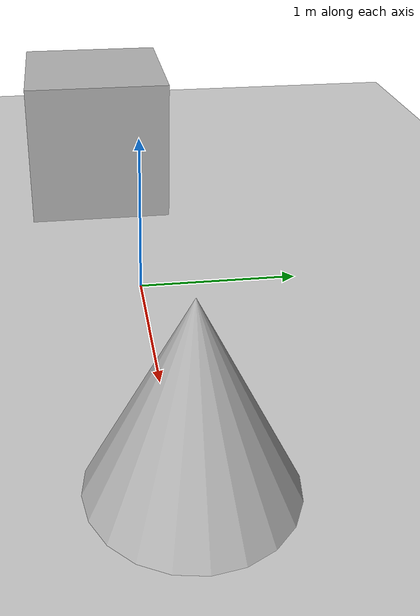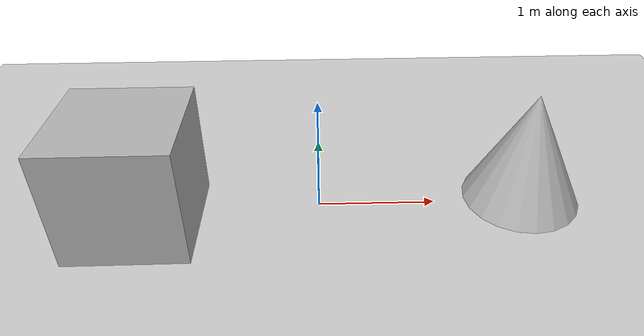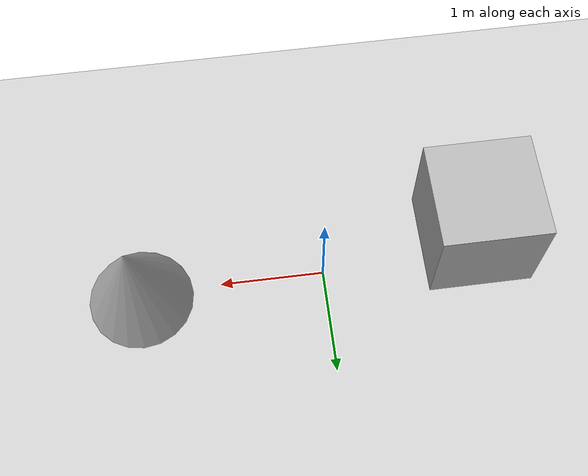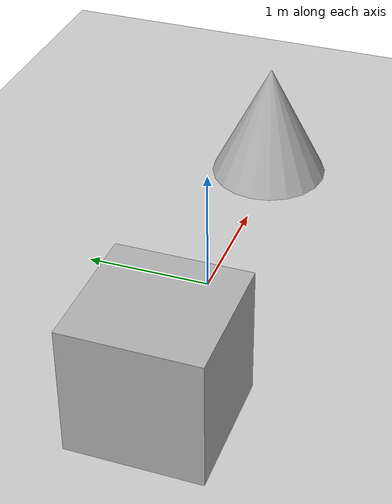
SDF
<sdf version='1.10'>
  <world name='empty'>
    <scene>
      <ambient>0.00999999978 0.00999999978 0.00999999978 1</ambient>
      <sky>
        <clouds>
          <speed>12</speed>
        </clouds>
      </sky>
      <shadows>true</shadows>
      <background>0.699999988 0.699999988 0.699999988 1</background>
    </scene>
    <plugin name='gz::sim::systems::Physics' filename='gz-sim-physics-system'/>
    <plugin name='gz::sim::systems::UserCommands' filename='gz-sim-user-commands-system'/>
    <plugin name='gz::sim::systems::SceneBroadcaster' filename='gz-sim-scene-broadcaster-system'/>
    <plugin name='gz::sim::systems::Sensors' filename='gz-sim-sensors-system'>
      <render_engine>ogre2</render_engine>
    </plugin>
    <plugin name='gz::sim::systems::Imu' filename='gz-sim-imu-system'/>
    <gravity>0 0 -9.8000000000000007</gravity>
    <magnetic_field>5.5644999999999998e-06 2.2875799999999999e-05 -4.2388400000000002e-05</magnetic_field>
    <atmosphere type='adiabatic'/>
    <physics type='ode'>
      <max_step_size>0.001</max_step_size>
      <real_time_factor>1</real_time_factor>
      <real_time_update_rate>1000</real_time_update_rate>
    </physics>
    <model name='ground_plane'>
      <static>true</static>
      <link name='link'>
        <collision name='collision'>
          <geometry>
            <plane>
              <normal>0 0 1</normal>
              <size>100 100</size>
            </plane>
          </geometry>
          <surface><friction>
              <ode>
                <mu>50</mu>
              </ode>
            </friction>
            <bounce/>
            <contact/>
          </surface>
        </collision>
        <visual name='visual'>
          <geometry>
            <plane>
              <normal>0 0 1</normal>
              <size>100 100</size>
            </plane>
          </geometry>
          <material>
            <ambient>0.800000012 0.800000012 0.800000012 1</ambient>
            <diffuse>0.800000012 0.800000012 0.800000012 1</diffuse>
            <specular>0.800000012 0.800000012 0.800000012 1</specular>
          </material>
        </visual>
        <pose>0 0 0 0 0 0</pose>
        <inertial>
          <pose>0 0 0 0 0 0</pose>
          <mass>1</mass>
          <inertia>
            <ixx>1</ixx>
            <ixy>0</ixy>
            <ixz>0</ixz>
            <iyy>1</iyy>
            <iyz>0</iyz>
            <izz>1</izz>
          </inertia>
        </inertial>
        <enable_wind>false</enable_wind>
      </link>
      <pose>0 0 0 0 0 0</pose>
      <self_collide>false</self_collide>
    </model>
    <model name='cone'>
      <pose>1.7687947343075781 0.051303428608850156 0.49999999992120586 2.2548609754249734e-12 -8.4123610005461406e-10 1.6327280808834754e-17</pose>
      <link name='cone_link'>
        <inertial>
          <inertia>
            <ixx>0.074999999999999997</ixx>
            <ixy>0</ixy>
            <ixz>0</ixz>
            <iyy>0.074999999999999997</iyy>
            <iyz>0</iyz>
            <izz>0.074999999999999997</izz>
          </inertia>
          <mass>1</mass>
          <pose>0 0 0 0 0 0</pose>
        </inertial>
        <collision name='cone_collision'>
          <geometry>
            <cone>
              <radius>0.5</radius>
              <length>1</length>
            </cone>
          </geometry>
          <surface>
            <friction>
              <ode/>
            </friction>
            <bounce/>
            <contact/>
          </surface>
        </collision>
        <visual name='cone_visual'>
          <geometry>
            <cone>
              <radius>0.5</radius>
              <length>1</length>
            </cone>
          </geometry>
          <material>
            <ambient>0.300000012 0.300000012 0.300000012 1</ambient>
            <diffuse>0.699999988 0.699999988 0.699999988 1</diffuse>
            <specular>1 1 1 1</specular>
          </material>
        </visual>
        <pose>0 0 0 0 0 0</pose>
        <enable_wind>false</enable_wind>
      </link>
      <static>false</static>
      <self_collide>false</self_collide>
    </model>
    <model name='box'>
      <pose>-1.4991545032558387 -0.18863353313567527 0.49999999990199806 -1.3802214535102596e-21 2.4743203419096324e-21 -4.6150916846459644e-22</pose>
      <link name='box_link'>
        <inertial>
          <inertia>
            <ixx>0.16666</ixx>
            <ixy>0</ixy>
            <ixz>0</ixz>
            <iyy>0.16666</iyy>
            <iyz>0</iyz>
            <izz>0.16666</izz>
          </inertia>
          <mass>1</mass>
          <pose>0 0 0 0 0 0</pose>
        </inertial>
        <collision name='box_collision'>
          <geometry>
            <box>
              <size>1 1 1</size>
            </box>
          </geometry>
          <surface>
            <friction>
              <ode/>
            </friction>
            <bounce/>
            <contact/>
          </surface>
        </collision>
        <visual name='box_visual'>
          <geometry>
            <box>
              <size>1 1 1</size>
            </box>
          </geometry>
          <material>
            <ambient>0.300000012 0.300000012 0.300000012 1</ambient>
            <diffuse>0.699999988 0.699999988 0.699999988 1</diffuse>
            <specular>1 1 1 1</specular>
          </material>
        </visual>
        <pose>0 0 0 0 0 0</pose>
        <enable_wind>false</enable_wind>
      </link>
      <static>false</static>
      <self_collide>false</self_collide>
    </model>
    <light name='sun' type='directional'>
      <pose>0 0 150 0 0 0</pose>
      <cast_shadows>false</cast_shadows>
      <intensity>1</intensity>
      <direction>0.29999999999999999 0.29999999999999999 -1</direction>
      <diffuse>1 1 1 1</diffuse>
      <specular>0.100000001 0.100000001 0.100000001 1</specular>
      <attenuation>
        <range>10</range>
        <linear>1</linear>
        <constant>1</constant>
        <quadratic>0</quadratic>
      </attenuation>
      <spot>
        <inner_angle>0</inner_angle>
        <outer_angle>0</outer_angle>
        <falloff>0</falloff>
      </spot>
    </light>
    <light name='sun_diffuse' type='directional'>
      <pose>0 0 -150 0 0 0</pose>
      <cast_shadows>false</cast_shadows>
      <intensity>1</intensity>
      <direction>-0.29999999999999999 -0.29999999999999999 -1</direction>
      <diffuse>0.600000024 0.600000024 0.600000024 1</diffuse>
      <specular>0 0 0 1</specular>
      <attenuation>
        <range>10</range>
        <linear>1</linear>
        <constant>1</constant>
        <quadratic>0</quadratic>
      </attenuation>
      <spot>
        <inner_angle>0</inner_angle>
        <outer_angle>0</outer_angle>
        <falloff>0</falloff>
      </spot>
    </light>
  </world>
</sdf>
